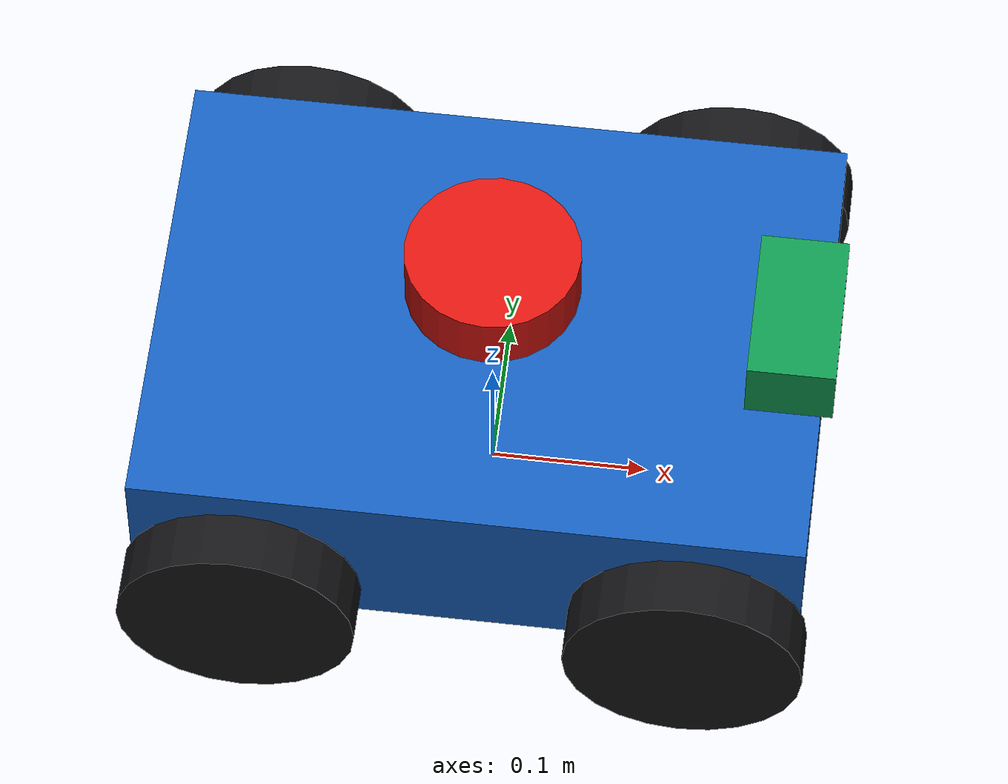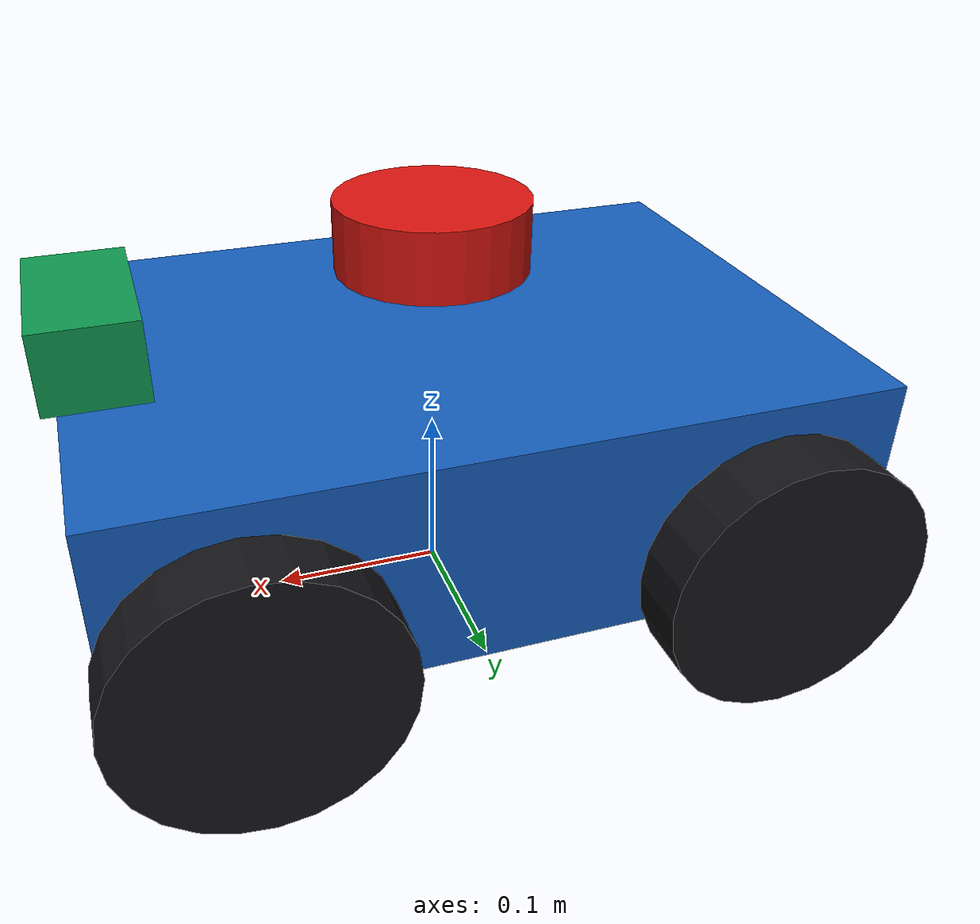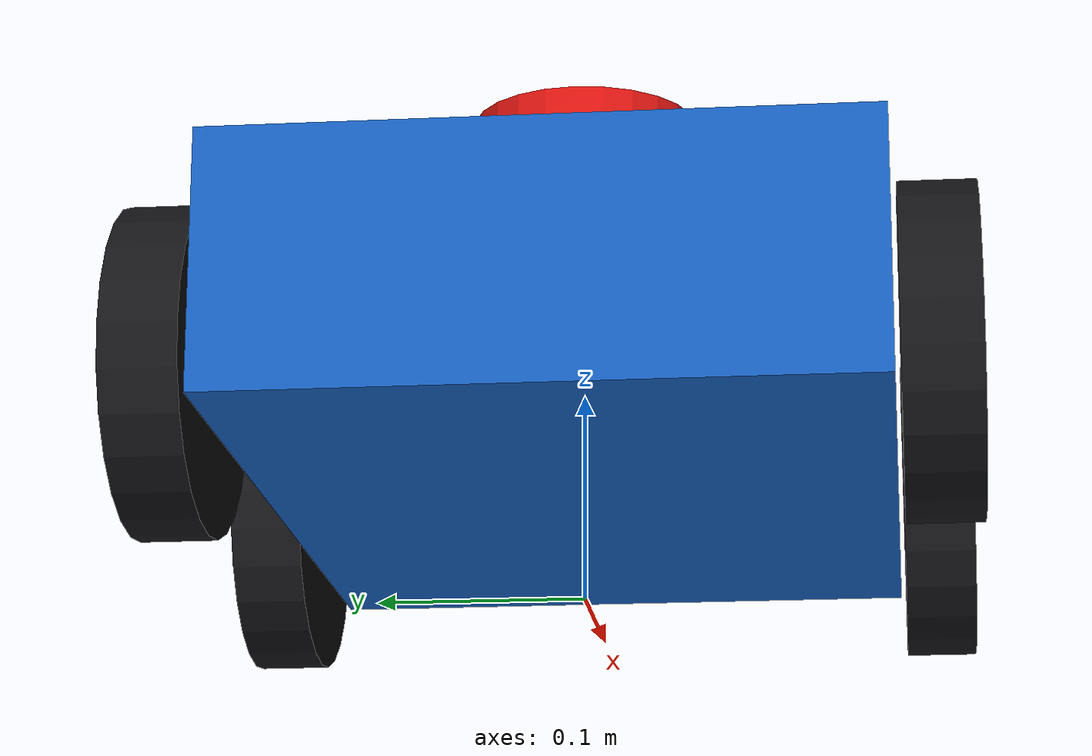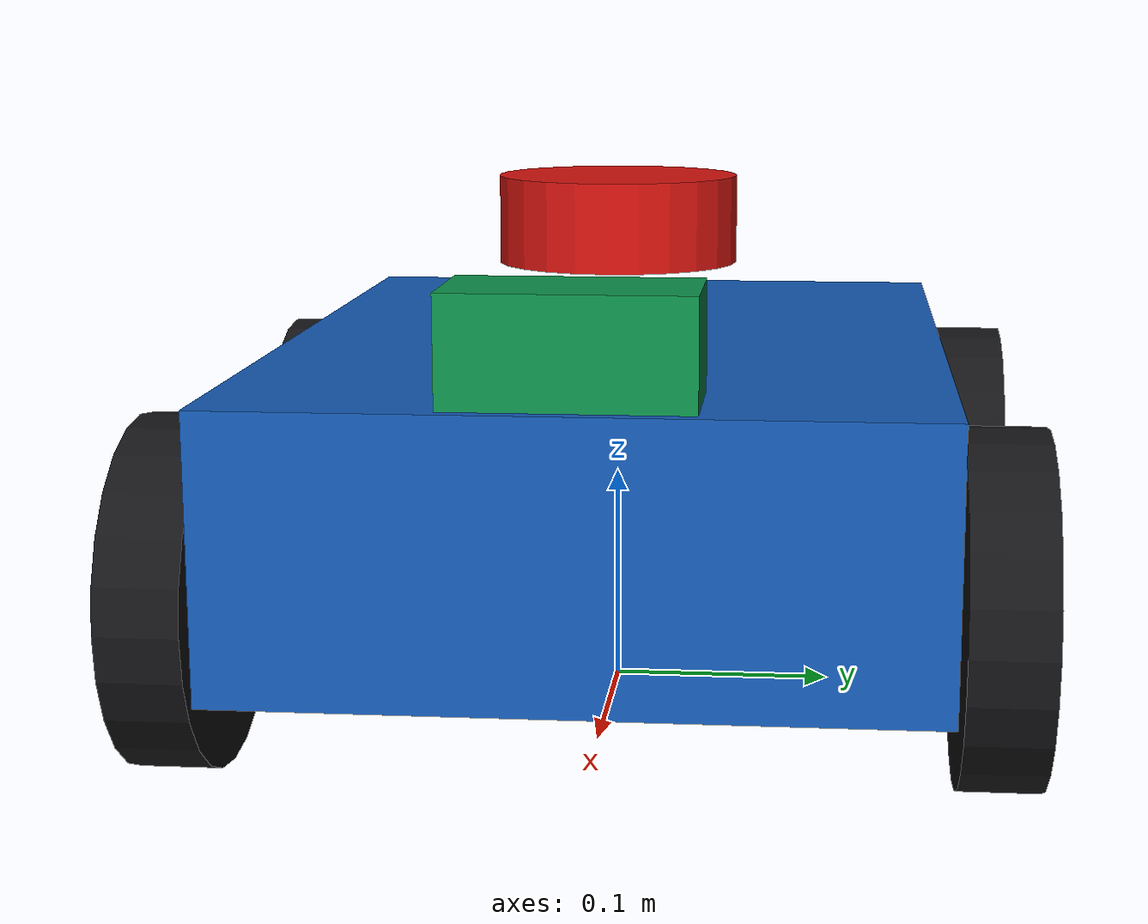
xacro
<?xml version="1.0"?>
<robot xmlns:xacro="http://www.ros.org/wiki/xacro" name="zhirong_diffbot">
  <xacro:property name="base_length" value="0.42"/>
  <xacro:property name="base_width" value="0.30"/>
  <xacro:property name="base_height" value="0.12"/>
  <xacro:property name="base_mass" value="8.0"/>

  <xacro:property name="wheel_radius" value="0.075"/>
  <xacro:property name="wheel_width" value="0.035"/>
  <xacro:property name="wheel_base" value="0.28"/>
  <xacro:property name="wheel_separation" value="0.34"/>
  <!-- Calibrated drive separation compensates the angular-speed loss caused
       by four-wheel lateral scrub; physical joint spacing remains 0.34 m. -->
  <xacro:property name="drive_wheel_separation" value="0.40"/>
  <xacro:property name="wheel_mass" value="0.5"/>

  <xacro:property name="lidar_radius" value="0.055"/>
  <xacro:property name="lidar_height" value="0.04"/>
  <xacro:property name="lidar_mass" value="0.25"/>

  <xacro:property name="camera_length" value="0.055"/>
  <xacro:property name="camera_width" value="0.10"/>
  <xacro:property name="camera_height" value="0.045"/>
  <xacro:property name="camera_mass" value="0.18"/>

  <xacro:macro name="box_inertial" params="mass x y z">
    <inertial>
      <mass value="${mass}"/>
      <origin xyz="0 0 0.03" rpy="0 0 0"/>
      <inertia
        ixx="${mass * (y * y + z * z) / 12.0}"
        ixy="0.0"
        ixz="0.0"
        iyy="${mass * (x * x + z * z) / 12.0}"
        iyz="0.0"
        izz="${mass * (x * x + y * y) / 12.0}"/>
    </inertial>
  </xacro:macro>

  <xacro:macro name="wheel" params="position x_offset y_offset">
    <link name="${position}_wheel_link">
      <visual>
        <origin xyz="0 0 0" rpy="${pi / 2.0} 0 0"/>
        <geometry>
          <cylinder radius="${wheel_radius}" length="${wheel_width}"/>
        </geometry>
        <material name="wheel_dark">
          <color rgba="0.08 0.08 0.09 1.0"/>
        </material>
      </visual>
      <collision>
        <origin xyz="0 0 0" rpy="${pi / 2.0} 0 0"/>
        <geometry>
          <cylinder radius="${wheel_radius}" length="${wheel_width}"/>
        </geometry>
      </collision>
      <inertial>
        <mass value="${wheel_mass}"/>
        <inertia
          ixx="${wheel_mass * (3.0 * wheel_radius * wheel_radius + wheel_width * wheel_width) / 12.0}"
          ixy="0.0"
          ixz="0.0"
          iyy="${wheel_mass * wheel_radius * wheel_radius / 2.0}"
          iyz="0.0"
          izz="${wheel_mass * (3.0 * wheel_radius * wheel_radius + wheel_width * wheel_width) / 12.0}"/>
      </inertial>
    </link>

    <joint name="${position}_wheel_joint" type="continuous">
      <parent link="base_link"/>
      <child link="${position}_wheel_link"/>
      <origin xyz="${x_offset} ${y_offset} 0" rpy="0 0 0"/>
      <axis xyz="0 1 0"/>
      <dynamics damping="0.05" friction="0.0"/>
    </joint>

    <gazebo reference="${position}_wheel_link">
      <material>Gazebo/DarkGrey</material>
      <fdir1>1 0 0</fdir1>
      <mu1>1.0</mu1>
      <mu2>0.10</mu2>
      <kp>1000000.0</kp>
      <kd>10.0</kd>
    </gazebo>
  </xacro:macro>

  <link name="base_footprint"/>

  <link name="base_link">
    <visual>
      <origin xyz="0 0 0.03" rpy="0 0 0"/>
      <geometry>
        <box size="${base_length} ${base_width} ${base_height}"/>
      </geometry>
      <material name="body_blue">
        <color rgba="0.08 0.36 0.72 1.0"/>
      </material>
    </visual>
    <collision>
      <origin xyz="0 0 0.03" rpy="0 0 0"/>
      <geometry>
        <box size="${base_length} ${base_width} ${base_height}"/>
      </geometry>
    </collision>
    <xacro:box_inertial
      mass="${base_mass}"
      x="${base_length}"
      y="${base_width}"
      z="${base_height}"/>
  </link>

  <joint name="base_footprint_joint" type="fixed">
    <parent link="base_footprint"/>
    <child link="base_link"/>
    <origin xyz="0 0 ${wheel_radius}" rpy="0 0 0"/>
  </joint>

  <xacro:wheel
    position="front_left"
    x_offset="${wheel_base / 2.0}"
    y_offset="${wheel_separation / 2.0}"/>
  <xacro:wheel
    position="front_right"
    x_offset="${wheel_base / 2.0}"
    y_offset="${-wheel_separation / 2.0}"/>
  <xacro:wheel
    position="rear_left"
    x_offset="${-wheel_base / 2.0}"
    y_offset="${wheel_separation / 2.0}"/>
  <xacro:wheel
    position="rear_right"
    x_offset="${-wheel_base / 2.0}"
    y_offset="${-wheel_separation / 2.0}"/>

  <link name="lidar_link">
    <visual>
      <geometry>
        <cylinder radius="${lidar_radius}" length="${lidar_height}"/>
      </geometry>
      <material name="lidar_red">
        <color rgba="0.85 0.08 0.06 1.0"/>
      </material>
    </visual>
    <collision>
      <geometry>
        <cylinder radius="${lidar_radius}" length="${lidar_height}"/>
      </geometry>
    </collision>
    <inertial>
      <mass value="${lidar_mass}"/>
      <inertia
        ixx="${lidar_mass * (3.0 * lidar_radius * lidar_radius + lidar_height * lidar_height) / 12.0}"
        ixy="0.0"
        ixz="0.0"
        iyy="${lidar_mass * (3.0 * lidar_radius * lidar_radius + lidar_height * lidar_height) / 12.0}"
        iyz="0.0"
        izz="${lidar_mass * lidar_radius * lidar_radius / 2.0}"/>
    </inertial>
  </link>

  <joint name="lidar_joint" type="fixed">
    <parent link="base_link"/>
    <child link="lidar_link"/>
    <origin xyz="0 0 0.145" rpy="0 0 0"/>
  </joint>

  <gazebo reference="base_link">
    <material>Gazebo/Blue</material>
  </gazebo>

  <gazebo reference="lidar_link">
    <material>Gazebo/Red</material>
    <sensor name="lidar_sensor" type="ray">
      <visualize>true</visualize>
      <always_on>true</always_on>
      <update_rate>10.0</update_rate>
      <pose>0 0 0 0 0 0</pose>
      <ray>
        <scan>
          <horizontal>
            <samples>720</samples>
            <resolution>1.0</resolution>
            <min_angle>-${pi}</min_angle>
            <max_angle>${pi}</max_angle>
          </horizontal>
        </scan>
        <range>
          <min>0.12</min>
          <max>12.0</max>
          <resolution>0.01</resolution>
        </range>
        <noise>
          <type>gaussian</type>
          <mean>0.0</mean>
          <stddev>0.005</stddev>
        </noise>
      </ray>
      <plugin name="zhirong_lidar_plugin" filename="libgazebo_ros_ray_sensor.so">
        <ros>
          <remapping>~/out:=scan</remapping>
        </ros>
        <output_type>sensor_msgs/LaserScan</output_type>
        <frame_name>lidar_link</frame_name>
      </plugin>
    </sensor>
  </gazebo>

  <link name="camera_link">
    <visual>
      <geometry>
        <box size="${camera_length} ${camera_width} ${camera_height}"/>
      </geometry>
      <material name="camera_green">
        <color rgba="0.05 0.58 0.30 1.0"/>
      </material>
    </visual>
    <collision>
      <geometry>
        <box size="${camera_length} ${camera_width} ${camera_height}"/>
      </geometry>
    </collision>
    <inertial>
      <mass value="${camera_mass}"/>
      <inertia
        ixx="${camera_mass * (camera_width * camera_width + camera_height * camera_height) / 12.0}"
        ixy="0.0"
        ixz="0.0"
        iyy="${camera_mass * (camera_length * camera_length + camera_height * camera_height) / 12.0}"
        iyz="0.0"
        izz="${camera_mass * (camera_length * camera_length + camera_width * camera_width) / 12.0}"/>
    </inertial>
  </link>

  <joint name="camera_joint" type="fixed">
    <parent link="base_link"/>
    <child link="camera_link"/>
    <origin xyz="0.19 0 0.115" rpy="0 0 0"/>
  </joint>

  <link name="camera_optical_link"/>

  <joint name="camera_optical_joint" type="fixed">
    <parent link="camera_link"/>
    <child link="camera_optical_link"/>
    <origin
      xyz="${camera_length / 2.0} 0 0"
      rpy="${-pi / 2.0} 0 ${-pi / 2.0}"/>
  </joint>

  <gazebo reference="camera_link">
    <material>Gazebo/Green</material>
    <sensor name="rgbd_sensor" type="depth">
      <visualize>false</visualize>
      <always_on>true</always_on>
      <update_rate>15.0</update_rate>
      <pose>${camera_length / 2.0} 0 0 0 0 0</pose>
      <camera>
        <horizontal_fov>1.2217304764</horizontal_fov>
        <image>
          <width>320</width>
          <height>240</height>
          <format>R8G8B8</format>
        </image>
        <depth_camera/>
        <clip>
          <near>0.15</near>
          <far>8.0</far>
        </clip>
        <noise>
          <type>gaussian</type>
          <mean>0.0</mean>
          <stddev>0.003</stddev>
        </noise>
      </camera>
      <plugin name="zhirong_rgbd_plugin" filename="libgazebo_ros_camera.so">
        <ros>
          <namespace>camera</namespace>
          <remapping>rgbd/image_raw:=color/image_raw</remapping>
          <remapping>rgbd/camera_info:=color/camera_info</remapping>
          <remapping>rgbd/depth/image_raw:=depth/image_raw</remapping>
          <remapping>rgbd/depth/camera_info:=depth/camera_info</remapping>
          <remapping>rgbd/points:=depth/points</remapping>
        </ros>
        <camera_name>rgbd</camera_name>
        <frame_name>camera_optical_link</frame_name>
        <min_depth>0.15</min_depth>
        <max_depth>8.0</max_depth>
      </plugin>
    </sensor>
  </gazebo>

  <gazebo>
    <plugin name="zhirong_skid_steer_drive" filename="libgazebo_ros_diff_drive.so">
      <ros>
        <remapping>cmd_vel:=cmd_vel_safe</remapping>
      </ros>
      <update_rate>50.0</update_rate>

      <num_wheel_pairs>2</num_wheel_pairs>

      <left_joint>front_left_wheel_joint</left_joint>
      <right_joint>front_right_wheel_joint</right_joint>
      <left_joint>rear_left_wheel_joint</left_joint>
      <right_joint>rear_right_wheel_joint</right_joint>

      <wheel_separation>${drive_wheel_separation}</wheel_separation>
      <wheel_separation>${drive_wheel_separation}</wheel_separation>
      <wheel_diameter>${2.0 * wheel_radius}</wheel_diameter>
      <wheel_diameter>${2.0 * wheel_radius}</wheel_diameter>

      <max_wheel_torque>5.0</max_wheel_torque>
      <max_wheel_acceleration>6.0</max_wheel_acceleration>

      <publish_odom>true</publish_odom>
      <publish_odom_tf>true</publish_odom_tf>
      <publish_wheel_tf>true</publish_wheel_tf>

      <odometry_frame>odom</odometry_frame>
      <robot_base_frame>base_footprint</robot_base_frame>
    </plugin>
  </gazebo>
</robot>
